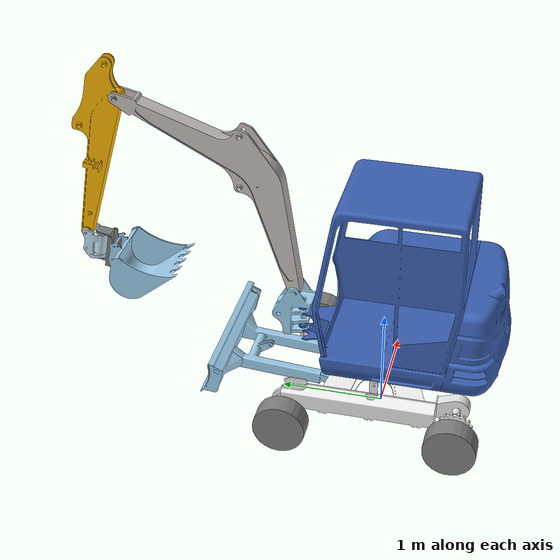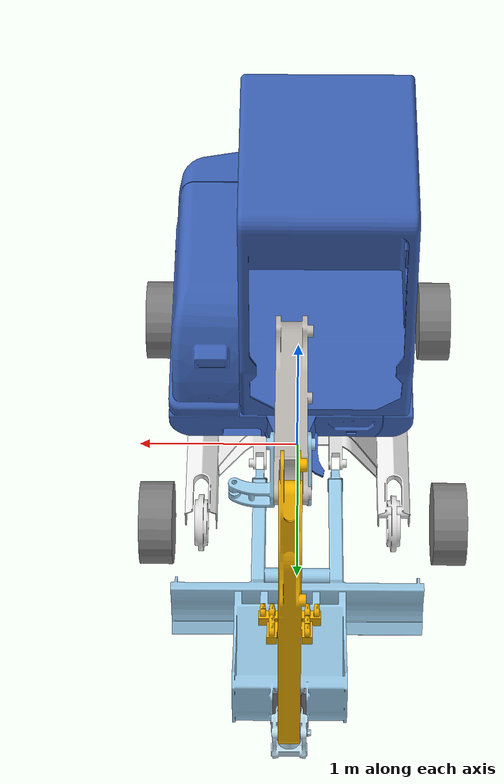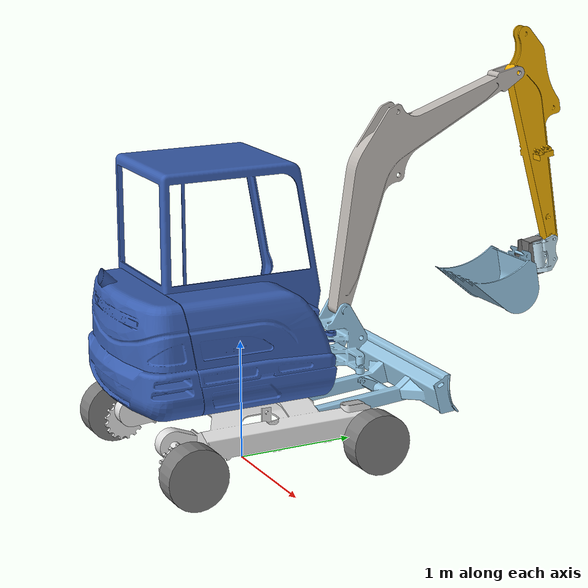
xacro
<?xml version="1.0"?>
<!-- BASE ROBOT XACRO -->
<robot xmlns:xacro="http://www.ros.org/wiki/xacro" name="excavator">

    <!-- EXCAVATOR SPECIFIC CONSTANTS -->
    <xacro:include filename="$(find sambot_description)/urdf/params.xacro" />

    <!-- JOINTS AND THEIR DYNAMICS -->
    <xacro:include filename="$(find sambot_description)/urdf/velocity/joints.xacro" />

    <link name="base_link"/>

    <link name="cabin_base">
        <visual>
            <origin xyz="${cabin_base_origin}" rpy="${cabin_base_rpy}" />
            <geometry>
                <mesh filename="${cabin_base_mesh}"/>
            </geometry>
            <material name="compact_excavator_cabin_body_material">
                <color rgba="${cabin_base_material}"/>
            </material>
        </visual>
        <collision>
            <origin xyz="${cabin_base_origin}" rpy="${cabin_base_rpy}" />
            <geometry>
                <mesh filename="${cabin_base_mesh}"/>
            </geometry>
        </collision>
        <inertial>
            <origin xyz="${cabin_inertial_origin}" rpy="${cabin_inertial_rpy}"/>
            <mass value="${cabin_base_mass}" />
            <inertia
                ixx="${cabin_base_inertial.split()[0]}"
                ixy="${cabin_base_inertial.split()[1]}"
                ixz="${cabin_base_inertial.split()[2]}"
                iyy="${cabin_base_inertial.split()[3]}"
                iyz="${cabin_base_inertial.split()[4]}"
                izz="${cabin_base_inertial.split()[5]}"
            />

        </inertial>
    </link>

    <link name="turret_base">
        <visual>
            <origin xyz="${turret_base_origin}" rpy="${turret_base_rpy}" />
            <geometry>
                <mesh filename="${turret_base_mesh}"/>
            </geometry>
            <material name="compact_excavator_frame_body_material">
                <color rgba="${turret_base_material}"/>
            </material>
        </visual>
        <collision>
            <origin xyz="${turret_base_origin}" rpy="${turret_base_rpy}" />
            <geometry>
                <mesh filename="${turret_base_mesh}"/>
            </geometry>
        </collision>
        <inertial>
            <origin xyz="${turret_base_inertial_origin}" rpy="${turret_base_inertial_rpy}"/>
            <mass value="${turret_base_mass}" />
            <inertia
                ixx="${turret_base_inertial.split()[0]}"
                ixy="${turret_base_inertial.split()[1]}"
                ixz="${turret_base_inertial.split()[2]}"
                iyy="${turret_base_inertial.split()[3]}"
                iyz="${turret_base_inertial.split()[4]}"
                izz="${turret_base_inertial.split()[5]}"
            />
        </inertial>
    </link>

    <link name="left_spinning_wheel_link">
        <visual>
            <origin xyz="${left_spinning_wheel_link_origin}" rpy="${left_spinning_wheel_link_rpy}" />
            <geometry>
                <mesh filename="${left_spinning_wheel_link_mesh}"/>
            </geometry>
            <material name="compact_excavator_main_drive_wheel_material">
                <color rgba="${left_spinning_wheel_link_material}"/>
            </material>
        </visual>
        <collision>
            <origin xyz="${left_spinning_wheel_link_origin}" rpy="${left_spinning_wheel_link_rpy}" />
            <geometry>
                <mesh filename="${left_spinning_wheel_link_mesh}"/>
            </geometry>
        </collision>
        <inertial>
            <origin xyz="${left_spinning_wheel_link_inertial_origin}" rpy="${left_spinning_wheel_link_inertial_rpy}"/>
            <mass value="${left_spinning_wheel_link_mass}" />
            <inertia
                ixx="${left_spinning_wheel_link_inertial.split()[0]}"
                ixy="${left_spinning_wheel_link_inertial.split()[1]}"
                ixz="${left_spinning_wheel_link_inertial.split()[2]}"
                iyy="${left_spinning_wheel_link_inertial.split()[3]}"
                iyz="${left_spinning_wheel_link_inertial.split()[4]}"
                izz="${left_spinning_wheel_link_inertial.split()[5]}"
            />
        </inertial>
    </link>

    <link name="right_spinning_wheel_link">
        <visual>
            <origin xyz="${right_spinning_wheel_link_origin}" rpy="${right_spinning_wheel_link_rpy}" />
            <geometry>
                <mesh filename="${right_spinning_wheel_link_mesh}"/>
            </geometry>
            <material name="compact_excavator_main_drive_wheel_material">
                <color rgba="${right_spinning_wheel_link_material}"/>
            </material>
        </visual>
        <collision>
            <origin xyz="${right_spinning_wheel_link_origin}" rpy="${right_spinning_wheel_link_rpy}" />
            <geometry>
                <mesh filename="${right_spinning_wheel_link_mesh}"/>
            </geometry>
        </collision>
        <inertial>
            <origin xyz="${right_spinning_wheel_link_inertial_origin}" rpy="${right_spinning_wheel_link_inertial_rpy}"/>
            <mass value="${right_spinning_wheel_link_mass}" />
            <inertia
                ixx="${right_spinning_wheel_link_inertial.split()[0]}"
                ixy="${right_spinning_wheel_link_inertial.split()[1]}"
                ixz="${right_spinning_wheel_link_inertial.split()[2]}"
                iyy="${right_spinning_wheel_link_inertial.split()[3]}"
                iyz="${right_spinning_wheel_link_inertial.split()[4]}"
                izz="${right_spinning_wheel_link_inertial.split()[5]}"
            />
        </inertial>
    </link>

    <link name="left_front_wheel_link">
        <visual>
            <origin xyz="${left_front_wheel_link_origin}" rpy="${left_front_wheel_link_rpy}" />
            <geometry>
                <mesh filename="${left_front_wheel_link_mesh}"/>
            </geometry>
            <material name="compact_excavator_front_wheel_material">
                <color rgba="${left_front_wheel_link_material}"/>
            </material>
        </visual>
        <collision>
            <origin xyz="${left_front_wheel_link_origin}" rpy="${left_front_wheel_link_rpy}" />
            <geometry>
                <mesh filename="${left_front_wheel_link_mesh}"/>
            </geometry>
        </collision>
        <inertial>
            <origin xyz="${left_front_wheel_link_inertial_origin}" rpy="${left_front_wheel_link_inertial_rpy}"/>
            <mass value="${left_front_wheel_link_mass}" />
            <inertia
                ixx="${left_front_wheel_link_inertial.split()[0]}"
                ixy="${left_front_wheel_link_inertial.split()[1]}"
                ixz="${left_front_wheel_link_inertial.split()[2]}"
                iyy="${left_front_wheel_link_inertial.split()[3]}"
                iyz="${left_front_wheel_link_inertial.split()[4]}"
                izz="${left_front_wheel_link_inertial.split()[5]}"
            />
        </inertial>
    </link>

    <link name="right_front_wheel_link">
        <visual>
            <origin xyz="${right_front_wheel_link_origin}" rpy="${right_front_wheel_link_rpy}" />
            <geometry>
                <mesh filename="${right_front_wheel_link_mesh}"/>
            </geometry>
            <material name="compact_excavator_front_wheel_material">
                <color rgba="${right_front_wheel_link_material}"/>
            </material>
        </visual>
        <collision>
            <origin xyz="${right_front_wheel_link_origin}" rpy="${right_front_wheel_link_rpy}" />
            <geometry>
                <mesh filename="${right_front_wheel_link_mesh}"/>
            </geometry>
        </collision>
        <inertial>
            <origin xyz="${right_front_wheel_link_inertial_origin}" rpy="${right_front_wheel_link_inertial_rpy}"/>
            <mass value="${right_front_wheel_link_mass}" />
            <inertia
                ixx="${right_front_wheel_link_inertial.split()[0]}"
                ixy="${right_front_wheel_link_inertial.split()[1]}"
                ixz="${right_front_wheel_link_inertial.split()[2]}"
                iyy="${right_front_wheel_link_inertial.split()[3]}"
                iyz="${right_front_wheel_link_inertial.split()[4]}"
                izz="${right_front_wheel_link_inertial.split()[5]}"
            />
        </inertial>
    </link>

    <link name="push_blade_base">
        <visual>
            <origin xyz="${push_blade_base_origin}" rpy="${push_blade_base_rpy}" />
            <geometry>
                <mesh filename="${push_blade_base_mesh}"/>
            </geometry>
            <material name="push_blade_base_material">
                <color rgba="${push_blade_base_material}"/>
            </material>
        </visual>
        <collision>
            <origin xyz="${push_blade_base_origin}" rpy="${push_blade_base_rpy}" />
            <geometry>
                <mesh filename="${push_blade_base_mesh}"/>
            </geometry>
        </collision>
        <inertial>
            <origin xyz="${push_blade_base_inertial_origin}" rpy="${push_blade_base_inertial_rpy}"/>
            <mass value="${push_blade_base_mass}" />
            <inertia
                ixx="${push_blade_base_inertial.split()[0]}"
                ixy="${push_blade_base_inertial.split()[1]}"
                ixz="${push_blade_base_inertial.split()[2]}"
                iyy="${push_blade_base_inertial.split()[3]}"
                iyz="${push_blade_base_inertial.split()[4]}"
                izz="${push_blade_base_inertial.split()[5]}"
            />
        </inertial>
    </link>

    <link name="swing_base">
        <visual>
            <origin xyz="${swing_base_origin}" rpy="${swing_base_rpy}" />
            <geometry>
                <mesh filename="${swing_base_mesh}"/>
            </geometry>
            <material name="part01_pin_1_material">
                <color rgba="${swing_base_material}"/>
            </material>
        </visual>
        <collision>
            <origin xyz="${swing_base_origin}" rpy="${swing_base_rpy}" />
            <geometry>
                <mesh filename="${swing_base_mesh}"/>
            </geometry>
        </collision>
        <inertial>
            <origin xyz="${swing_base_inertial_origin}" rpy="${swing_base_inertial_rpy}"/>
            <mass value="${swing_base_mass}" />
            <inertia
                ixx="${swing_base_inertial.split()[0]}"
                ixy="${swing_base_inertial.split()[1]}"
                ixz="${swing_base_inertial.split()[2]}"
                iyy="${swing_base_inertial.split()[3]}"
                iyz="${swing_base_inertial.split()[4]}"
                izz="${swing_base_inertial.split()[5]}"
            />
        </inertial>
    </link>

    <link name="boom_base">
        <visual>
            <origin xyz="${boom_base_origin}" rpy="${boom_base_rpy}" />
            <geometry>
                <mesh filename="${boom_base_mesh}"/>
            </geometry>
            <material name="part02_material">
                <color rgba="${boom_base_material}"/>
            </material>
        </visual>
        <collision>
            <origin xyz="${boom_base_origin}" rpy="${boom_base_rpy}" />
            <geometry>
                <mesh filename="${boom_base_mesh}"/>
            </geometry>
        </collision>
        <inertial>
            <origin xyz="${boom_base_inertial_origin}" rpy="${boom_base_inertial_rpy}"/>
            <mass value="${boom_base_mass}" />
            <inertia
                ixx="${boom_base_inertial.split()[0]}"
                ixy="${boom_base_inertial.split()[1]}"
                ixz="${boom_base_inertial.split()[2]}"
                iyy="${boom_base_inertial.split()[3]}"
                iyz="${boom_base_inertial.split()[4]}"
                izz="${boom_base_inertial.split()[5]}"
            />
        </inertial>
    </link>

    <link name="arm_base">
        <visual>
            <origin xyz="${arm_base_origin}" rpy="${arm_base_rpy}" />
            <geometry>
                <mesh filename="${arm_base_mesh}"/>
            </geometry>
            <material name="part03_material">
                <color rgba="${arm_base_material}"/>
            </material>
        </visual>
        <collision>
            <origin xyz="${arm_base_origin}" rpy="${arm_base_rpy}" />
            <geometry>
                <mesh filename="${arm_base_mesh}"/>
            </geometry>
        </collision>
        <inertial>
            <origin xyz="${arm_base_inertial_origin}" rpy="${arm_base_inertial_rpy}"/>
            <mass value="${arm_base_mass}" />
            <inertia
                ixx="${arm_base_inertial.split()[0]}"
                ixy="${arm_base_inertial.split()[1]}"
                ixz="${arm_base_inertial.split()[2]}"
                iyy="${arm_base_inertial.split()[3]}"
                iyz="${arm_base_inertial.split()[4]}"
                izz="${arm_base_inertial.split()[5]}"
            />
        </inertial>
    </link>

    <link name="${bucket_link_name}">
        <visual>
            <origin xyz="${bucket_mesh1_origin}" rpy="${bucket_mesh1_rpy}" />
            <geometry>
                <mesh filename="${bucket_mesh1}"/>
            </geometry>
            <material name="part04_material">
                <color rgba="${bucket_mesh1_material}"/>
            </material>
        </visual>
        <collision>
            <origin xyz="${bucket_mesh1_origin}" rpy="${bucket_mesh1_rpy}" />
            <geometry>
                <mesh filename="${bucket_mesh1}"/>
            </geometry>
        </collision>
        <inertial>
            <origin xyz="${bucket_inertial_origin}" rpy="${bucket_inertial_rpy}"/>
            <mass value="${bucket_base_mass}" />
            <inertia
                ixx="${bucket_base_inertial.split()[0]}"
                ixy="${bucket_base_inertial.split()[1]}"
                ixz="${bucket_base_inertial.split()[2]}"
                iyy="${bucket_base_inertial.split()[3]}"
                iyz="${bucket_base_inertial.split()[4]}"
                izz="${bucket_base_inertial.split()[5]}"
            />
        </inertial>
        <visual>
            <origin xyz="${bucket_mesh2_origin}" rpy="${bucket_mesh2_rpy}" />
            <geometry>
                <mesh filename="${bucket_mesh2}"/>
            </geometry>
            <material name="bucket_material">
                <color rgba="${bucket_mesh2_material}"/>
            </material>
        </visual>
        <collision>
            <origin xyz="${bucket_mesh2_origin}" rpy="${bucket_mesh2_rpy}" />
            <geometry>
                <mesh filename="${bucket_mesh2}"/>
            </geometry>
        </collision>
        <visual>
            <origin xyz="${bucket_mesh3_origin}" rpy="${bucket_mesh3_rpy}" />
            <geometry>
                <mesh filename="${bucket_mesh3}"/>
            </geometry>
            <material name="bucket_mount_material">
                <color rgba="${bucket_mesh3_material}"/>
            </material>
        </visual>
        <collision>
            <origin xyz="${bucket_mesh3_origin}" rpy="${bucket_mesh3_rpy}" />
            <geometry>
                <mesh filename="${bucket_mesh3}"/>
            </geometry>
        </collision>
    </link>

    <!-- SKID WHEELS FOR SKID-STEER CONTROL -->
    <xacro:skid_wheel wheel_name="${left_skid_wheel_spinning_link_name}" mu1="1" mu2="1"/>
    <xacro:skid_wheel wheel_name="${left_skid_wheel_free_link_name}" mu1="1" mu2="1"/>
    <xacro:skid_wheel wheel_name="${right_skid_wheel_spinning_link_name}" mu1="1" mu2="1"/>
    <xacro:skid_wheel wheel_name="${right_skid_wheel_free_link_name}" mu1="1" mu2="1"/>

    <xacro:dynamics_plugins/>
</robot>

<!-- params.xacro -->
<robot xmlns:xacro="http://ros.org/wiki/xacro">
    <xacro:property name="mesh_root" value="file://$(find sambot_description)/meshes"/>

    <!-- MAIN LINK NAMES -->
    <xacro:property name="base_link_name" value="base_link"/>
    <xacro:property name="cabin_link_name" value="cabin_base"/>
    <xacro:property name="turret_link_name" value="turret_base"/>
    <xacro:property name="plow_link_name" value="push_blade_base"/>
    <xacro:property name="swing_link_name" value="swing_base"/>
    <xacro:property name="boom_link_name" value="boom_base"/>
    <xacro:property name="arm_link_name" value="arm_base"/>
    <xacro:property name="bucket_link_name" value="bucket_base"/>

    <!-- WHEEL LINKS -->
    <xacro:property name="left_spinning_wheel_link_name" value="left_spinning_wheel_link"/>
    <xacro:property name="right_spinning_wheel_link_name" value="right_spinning_wheel_link"/>
    <xacro:property name="left_front_wheel_link_name" value="left_front_wheel_link"/>
    <xacro:property name="right_front_wheel_link_name" value="right_front_wheel_link"/>
    <xacro:property name="left_skid_wheel_spinning_link_name" value="left_skid_wheel_spinning"/>
    <xacro:property name="left_skid_wheel_free_link_name" value="left_skid_wheel_free"/>
    <xacro:property name="right_skid_wheel_spinning_link_name" value="right_skid_wheel_spinning"/>
    <xacro:property name="right_skid_wheel_free_link_name" value="right_skid_wheel_free"/>

    <!-- JOINT NAMES -->
    <xacro:property name="base_to_turret_joint_name" value="base_to_turret"/>
    <xacro:property name="left_spinning_to_turret_joint_name" value="left_spinning_to_turret"/>
    <xacro:property name="left_front_to_turret_joint_name" value="left_front_to_turret"/>
    <xacro:property name="right_spinning_to_turret_joint_name" value="right_spinning_to_turret"/>
    <xacro:property name="right_front_to_turret_joint_name" value="right_front_to_turret"/>
    <xacro:property name="plow_to_base_joint_name" value="plow_to_base"/>
    <xacro:property name="swing_to_boom_joint_name" value="swing_to_boom"/>
    <xacro:property name="boom_to_arm_joint_name" value="boom_to_arm"/>
    <xacro:property name="arm_to_bucket_joint_name" value="arm_to_bucket"/>
    <xacro:property name="cabin_to_swing_joint_name" value="cabin_to_swing"/>
    <xacro:property name="excavator_slew_joint_name" value="excavator_slew"/>
    <xacro:property name="left_spin_to_skid_joint_name" value="left_spin_to_skid"/>
    <xacro:property name="left_free_to_skid_joint_name" value="left_free_to_skid"/>
    <xacro:property name="right_spin_to_skid_joint_name" value="right_spin_to_skid"/>
    <xacro:property name="right_free_to_skid_joint_name" value="right_free_to_skid"/>

    <!-- CABIN LINK PARAMS -->
    <xacro:property name="cabin_base_mesh" value="${mesh_root}/compact_excavator_cabin_body.stl"/>
    <xacro:property name="cabin_base_origin" value="0.1592 -0.2513 0.2814"/>
    <xacro:property name="cabin_base_rpy" value="0 0 0"/>
    <xacro:property name="cabin_base_mass" value="9732.8039"/>
    <xacro:property name="cabin_inertial_origin" value="-0.1469 0.4412 0.4509"/>
    <xacro:property name="cabin_inertial_rpy" value="0 0 0"/>
    <xacro:property name="cabin_base_material" value="0.2314 0.3804 0.7059 1.0"/>
    <xacro:property name="cabin_base_inertial" value="3175.1655302028038932 -269.97312494382822479 167.61780128589879268 2627.6328649732372469 -193.85494965010886403 3742.616047274826542"/>

    <!-- TURRET PARAMS -->
    <xacro:property name="turret_base_mesh" value="${mesh_root}/compact_excavator_frame_body.stl"/>
    <xacro:property name="turret_base_origin" value="0 0 0"/>
    <xacro:property name="turret_base_rpy" value="0 0 0"/>
    <xacro:property name="turret_base_mass" value="459.1171"/>
    <xacro:property name="turret_base_inertial_origin" value="-0.0068 -0.1255 -0.1865"/>
    <xacro:property name="turret_base_inertial_rpy" value="0 0 0"/>
    <xacro:property name="turret_base_material" value="0.9176 0.9176 0.9176 1.0"/>
    <xacro:property name="turret_base_inertial" value="103.54309263053609413 2.8689912175751035583 -0.26918599165092144121 71.550382439979060223 -8.7881744003938315757 164.71779214088334697"/>

    <!-- LEFT SPINNING (BACK) WHEEL -->
    <xacro:property name="left_spinning_wheel_link_mesh" value="${mesh_root}/compact_excavator_main_drive_wheel.stl"/>
    <xacro:property name="left_spinning_wheel_link_origin" value="0 -2.0816681711721685133e-17 -0.015000000000000124345"/>
    <xacro:property name="left_spinning_wheel_link_rpy" value="-4.71 0 0"/>
    <xacro:property name="left_spinning_wheel_link_material" value="0.91764705882352937127 0.91764705882352937127 0.91764705882352937127 1.0"/>
    <xacro:property name="left_spinning_wheel_link_inertial_origin" value="2.7929494467705319618e-05 -2.4226277708340838271e-16 -0.047030821852304713349"/>
    <xacro:property name="left_spinning_wheel_link_inertial_rpy" value="0 0 0"/>
    <xacro:property name="left_spinning_wheel_link_mass" value="35.986291345795820007"/>
    <xacro:property name="left_spinning_wheel_link_inertial" value="0.20071737580058110484 2.1151248144254331483e-17 7.9696042408110000254e-05 0.20066206838835709547 2.9623558171777900037e-16 0.29333573070696433716"/>

    <!-- RIGHT SPINNING (BACK) WHEEL -->
    <xacro:property name="right_spinning_wheel_link_mesh" value="${mesh_root}/compact_excavator_main_drive_wheel.stl"/>
    <xacro:property name="right_spinning_wheel_link_origin" value="-6.9388939039072283776e-18 0 -0.015000000000000013323"/>
    <xacro:property name="right_spinning_wheel_link_rpy" value="1.57 0 0"/>
    <xacro:property name="right_spinning_wheel_link_material" value="0.91764705882352937127 0.91764705882352937127 0.91764705882352937127 1.0"/>
    <xacro:property name="right_spinning_wheel_link_inertial_origin" value="2.7929494467698390888e-05 -2.2144767850277592569e-16 -0.047030821852304602326"/>
    <xacro:property name="right_spinning_wheel_link_inertial_rpy" value="0 0 0"/>
    <xacro:property name="right_spinning_wheel_link_mass" value="35.986291345795820007"/>
    <xacro:property name="right_spinning_wheel_link_inertial" value="0.20071737580058127137 6.1250580134766935832e-18 7.9696042408110027359e-05 0.20066206838835703996 2.9623106429686494369e-16 0.29333573070696433716"/>

    <!-- LEFT FRONT WHEEL -->
    <xacro:property name="left_front_wheel_link_mesh" value="${mesh_root}/compact_excavator_front_wheel.stl"/>
    <xacro:property name="left_front_wheel_link_origin" value="1.1102230246251565404e-16 -1.1102230246251565404e-16 -0.032500000000000084377"/>
    <xacro:property name="left_front_wheel_link_rpy" value="0 1.570796326794896336 0"/>
    <xacro:property name="left_front_wheel_link_material" value="0.91764705882352937127 0.91764705882352937127 0.91764705882352937127 1.0"/>
    <xacro:property name="left_front_wheel_link_inertial_origin" value="8.8979772495497043726e-17 -1.1262368284473494847e-16 -0.032500000000000070499"/>
    <xacro:property name="left_front_wheel_link_inertial_rpy" value="0 0 0"/>
    <xacro:property name="left_front_wheel_link_mass" value="17.64673591392957519"/>
    <xacro:property name="left_front_wheel_link_inertial" value="0.153078316536178205 1.0629206596102168903e-17 2.6922495826861160064e-17 0.15307831653617814949 6.9747558075870228735e-33 0.29963755764746907717"/>

    <!-- RIGHT FRONT WHEEL -->
    <xacro:property name="right_front_wheel_link_mesh" value="${mesh_root}/compact_excavator_front_wheel.stl"/>
    <xacro:property name="right_front_wheel_link_origin" value="-2.7755575615628913511e-17 0 -0.032500000000000084377"/>
    <xacro:property name="right_front_wheel_link_rpy" value="-3.14 -1.570796326794896336 0"/>
    <xacro:property name="right_front_wheel_link_material" value="0.91764705882352937127 0.91764705882352937127 0.91764705882352937127 1.0"/>
    <xacro:property name="right_front_wheel_link_inertial_origin" value="-2.7755575615628913511e-17 0 -0.032500000000000084377"/>
    <xacro:property name="right_front_wheel_link_inertial_rpy" value="0 0 0"/>
    <xacro:property name="right_front_wheel_link_mass" value="17.64673591392957519"/>
    <xacro:property name="right_front_wheel_link_inertial" value="0.153078316536178205 -1.0629206596102168903e-17 2.6922495826861160064e-17 0.15307831653617814949 6.9747558075870228735e-33 0.29963755764746907717"/>

    <!-- PLOW -->
    <xacro:property name="push_blade_base_mesh" value="${mesh_root}/push_blade_bucket.stl"/>
    <xacro:property name="push_blade_base_origin" value="-0.021564399534920564161 1.0799900599760599018 -0.25500000000000000444"/>
    <xacro:property name="push_blade_base_rpy" value="-3.14 -1.57 0"/>
    <xacro:property name="push_blade_base_material" value="0.61568627450980395466 0.81176470588235294379 0.92941176470588238168 1.0"/>
    <xacro:property name="push_blade_base_inertial_origin" value="-0.10970493109347190241 0.88075063461342828486 -0.25500033703320834633"/>
    <xacro:property name="push_blade_base_inertial_rpy" value="0 0 0"/>
    <xacro:property name="push_blade_base_mass" value="147.01808168083425699"/>
    <xacro:property name="push_blade_base_inertial" value="31.881096131626421197 0.91247385061899932701 -1.6212090668492922982e-05 21.196220352263214437 4.9900082202379639952e-06 13.169227707961496776"/>

    <!-- SWING -->
    <xacro:property name="swing_base_mesh" value="${mesh_root}/part01_pin_1.stl"/>
    <xacro:property name="swing_base_origin" value="2.7755575615628913511e-17 0.074999999999999955591 -0.14999999999999996669"/>
    <xacro:property name="swing_base_rpy" value="-3.14 -6.1629758220391547298e-33 -3.9110122218931175387e-17"/>
    <xacro:property name="swing_base_material" value="0.61568627450980395466 0.81176470588235294379 0.92941176470588238168 1.0"/>
    <xacro:property name="swing_base_inertial_origin" value="-0.026030309007671018073 0.10672288733099301317 0.097553850513847364945"/>
    <xacro:property name="swing_base_inertial_rpy" value="0 0 0"/>
    <xacro:property name="swing_base_mass" value="98.140190062279060612"/>
    <xacro:property name="swing_base_inertial" value="2.6085778666185075458 0.040227300901953748358 0.42136783119553594679 3.1665232143977135593 -0.15916376835413623136 1.7889951810686841593"/>

    <!-- BOOM -->
    <xacro:property name="boom_base_mesh" value="${mesh_root}/part02.stl"/>
    <xacro:property name="boom_base_origin" value="0 -1.1102230246251565404e-16 -0.079999999999999987788"/>
    <xacro:property name="boom_base_rpy" value="-1.57 0 0"/>
    <xacro:property name="boom_base_material" value="0.77647058823529413463 0.7568627450980391913 0.73725490196078435901 1.0"/>
    <xacro:property name="boom_base_inertial_origin" value="-0.04007940207094668611 1.215334476695421273 -0.079873417172118876817"/>
    <xacro:property name="boom_base_inertial_rpy" value="0 0 0"/>
    <xacro:property name="boom_base_mass" value="694.17793513858055121"/>
    <xacro:property name="boom_base_inertial" value="242.81245205849677404 71.370938403077758494 0.0065905643878567711502 49.641340591529456105 -0.034260052091464154866 289.83702909122945357"/>

    <!-- ARM -->
    <xacro:property name="arm_base_mesh" value="${mesh_root}/part03.stl"/>
    <xacro:property name="arm_base_origin" value="0 -2.2204460492503130808e-16 -0.054999999999999882316"/>
    <xacro:property name="arm_base_rpy" value="1.57 0 0"/>
    <xacro:property name="arm_base_material" value="0.98039215686274505668 0.71372549019607844922 0.0039215686274509803377 1.0"/>
    <xacro:property name="arm_base_inertial_origin" value="0.10866226733951289685 -0.60164797350906107365 -0.055167291851018741833"/>
    <xacro:property name="arm_base_inertial_rpy" value="0 0 0"/>
    <xacro:property name="arm_base_mass" value="265.34907807560875881"/>
    <xacro:property name="arm_base_inertial" value="57.599134249663784146 0.078442580554215754485 0.0049826290162324230956 1.8968981412117758012 0.02459901605653430981 58.868680211308259231"/>

    <!-- BUCKET(S) -->
    <xacro:property name="bucket_mesh1" value="${mesh_root}/part04.stl"/>
    <xacro:property name="bucket_mesh1_origin" value="0.060000000000000053291 0.14000000000000012434 0.054999999999999993339"/>
    <xacro:property name="bucket_mesh1_rpy" value="-3.14 -1.57 0"/>
    <xacro:property name="bucket_mesh1_material" value="0.76862745098039220171 0.88627450980392152857 0.95294117647058818044 1.0"/>
    <xacro:property name="bucket_mesh2" value="${mesh_root}/bucket.stl"/>
    <xacro:property name="bucket_mesh2_origin" value="0.078718096856630614955 0.97961106773940276327 0.054999999999992416067"/>
    <xacro:property name="bucket_mesh2_rpy" value="-1.57 0 3"/>
    <xacro:property name="bucket_mesh2_material" value="0.61568627450980395466 0.81176470588235294379 0.92941176470588238168 1.0"/>
    <xacro:property name="bucket_mesh3" value="${mesh_root}/bucket_mount.stl"/>
    <xacro:property name="bucket_mesh3_origin" value="0.16999999999999237943 0.30800000000000604672 0.054999999999999299449"/>
    <xacro:property name="bucket_mesh3_rpy" value="-4.71 -1.57 0"/>
    <xacro:property name="bucket_mesh3_material" value="0.49803921568627451677 0.49803921568627451677 0.49803921568627451677 1.0"/>
    <xacro:property name="bucket_inertial_origin" value="0.21363777998579594475 0.42618058483691984017 0.055071497454761988988"/>
    <xacro:property name="bucket_inertial_rpy" value="0 0 0"/>
    <xacro:property name="bucket_base_mass" value="132.70765933863819441"/>
    <xacro:property name="bucket_base_inertial" value="14.03567187790122972 -1.6652440163767181502 0.0020270508814650067472 6.8549730106956987541 0.0040437120644442776929 11.610921270718170817"/>

    <!-- SKID WHEELS FOR DIFF DRIVE -->
    <xacro:property name="rubber_density" value="1100"/>
    <xacro:property name="wheel_radius" value="0.25"/>
    <xacro:property name="wheel_length" value="0.2"/>

    <xacro:macro name="skid_wheel" params="wheel_name mu1 mu2">
        <!-- MULTIPLIED BY 100 TO ANCHOR -->
        <xacro:property name="wheel_mass" value="${100*3.1415*(wheel_radius**2)*wheel_length*rubber_density}"/>
        <xacro:property name="wheel_ixx" value="${(1/12)*wheel_mass*(3*wheel_radius**2 + wheel_length**2)}"/>
        <xacro:property name="wheel_iyy" value="${(1/12)*wheel_mass*(3*wheel_radius**2 + wheel_length**2)}"/>
        <xacro:property name="wheel_izz" value="${(1/2)*wheel_mass*wheel_radius**2}"/>
        <link name="${wheel_name}">
            <visual>
                <origin xyz="0 0 0" rpy="0 0 0"/>
                <geometry>
                    <cylinder radius="${wheel_radius}" length="${wheel_length}"/>
                </geometry>
                <material name="wheel_material">
                    <color rgba="0.5 0.5 0.5 1.0"/>
                </material>
            </visual>
            <collision>
                <origin xyz="0 0 0" rpy="0 0 0"/>
                <geometry>
                    <cylinder radius="${wheel_radius}" length="${wheel_length}"/>
                </geometry>
            </collision>
            <surface>
                <friction>
                    <ode>
                        <mu>${mu1}</mu>
                        <mu2>${mu2}</mu2>
                    </ode>
                </friction>
            </surface>
            <inertial>
                <origin xyz="0 0 0" rpy="0 0 0"/>
                <mass value="${wheel_mass}"/>
                <inertia ixx="${wheel_ixx}" ixy="0" ixz="0" iyy="${wheel_iyy}" iyz="0" izz="${wheel_izz}"/>
            </inertial>
        </link>
    </xacro:macro>

</robot>

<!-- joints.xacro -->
<robot xmlns:xacro="http://ros.org/wiki/xacro">

    <xacro:include filename="$(find sambot_description)/urdf/params.xacro"/>
    <xacro:include filename="$(find sambot_description)/urdf/velocity/dynamics.xacro"/>

    <xacro:macro name="joint_dynamics" params="limit_lower limit_upper effort velocity dyn_damping friction stiffness damping">
        <limit effort="${effort}" velocity="${velocity}" lower="${limit_lower}" upper="${limit_upper}"/>
        <stiffness>${stiffness}</stiffness>
            <damping>${damping}</damping>
            <pid>
                <p>1</p>
                <i>0</i>
                <d>0</d>
            </pid>
        <dynamics damping="${dyn_damping}" friction="${friction}"/>
    </xacro:macro>

    <joint name="${left_spin_to_skid_joint_name}" type="fixed">
        <origin xyz="0 0 -0.3" rpy="0 0 0"/>
        <parent link="${left_spinning_wheel_link_name}"/>
        <child link="${left_skid_wheel_spinning_link_name}"/>
        <axis xyz="0 0 1"/>

    </joint>

    <joint name="${left_free_to_skid_joint_name}" type="fixed">
        <origin xyz="0 0 0.3" rpy="0 0 0"/>
        <parent link="${left_front_wheel_link_name}"/>
        <child link="${left_skid_wheel_free_link_name}"/>
        <axis xyz="0 0 1"/>
    </joint>

    <joint name="${right_spin_to_skid_joint_name}" type="fixed">
        <origin xyz="0 0 -0.3" rpy="0 0 0"/>
        <parent link="${right_spinning_wheel_link_name}"/>
        <child link="${right_skid_wheel_spinning_link_name}"/>
        <axis xyz="0 0 1"/>
    </joint>

    <joint name="${right_free_to_skid_joint_name}" type="fixed">
        <origin xyz="0 0 -0.3" rpy="0 0 0"/>
        <parent link="${right_front_wheel_link_name}"/>
        <child link="${right_skid_wheel_free_link_name}"/>
        <axis xyz="0 0 1"/>
    </joint>

    <joint name="${base_to_turret_joint_name}" type="fixed">
        <origin xyz="0 0 0.55" rpy="0 0 0" />
        <parent link="${base_link_name}" />
        <child link="${turret_link_name}" />
        <axis xyz="0 0 1"/>
    </joint>

    <joint name="${left_spinning_to_turret_joint_name}" type="continuous">
        <origin xyz="-0.5739999999999999547 -0.80000000000000015543 -0.2750000000000000222" rpy="1.570796326794896558 -0.3547477759675310427 1.5707963267948976682" />
        <parent link="${turret_link_name}" />
        <child link="${left_spinning_wheel_link_name}" />
        <axis xyz="0 0 1"/>
        <limit effort="1000" velocity="1" />
    </joint>

    <joint name="${right_spinning_to_turret_joint_name}" type="continuous">
        <origin xyz="0.5739999999999999547 -0.80000000000000004441 -0.2750000000000000222" rpy="1.570796326794896558 -1.2984776443375001254 -1.5707963267948972241" />
        <parent link="${turret_link_name}" />
        <child link="${right_spinning_wheel_link_name}" />
        <axis xyz="0 0 1"/>
        <limit effort="1000" velocity="1" />
    </joint>

    <joint name="${left_front_to_turret_joint_name}" type="continuous">
        <origin xyz="-0.61299999999999998934 0.80000000000000026645 -0.2750000000000000222" rpy="1.570796326794896558 -1.0222876983448163646 -1.5707963267948941155" />
        <parent link="${turret_link_name}" />
        <child link="${left_front_wheel_link_name}" />
        <axis xyz="0 0 1"/>
        <limit effort="1000" velocity="1" />
    </joint>

    <joint name="${right_front_to_turret_joint_name}" type="continuous">
        <origin xyz="0.54800000000000004263 0.80000000000000015543 -0.27499999999999996669" rpy="1.57079632679489678 -1.1102232252180887662e-16 -1.5707963267948976682" />
        <parent link="${turret_link_name}" />
        <child link="${right_front_wheel_link_name}" />
        <axis xyz="0 0 1"/>
        <limit effort="1000" velocity="1" />
    </joint>

    <joint name="${plow_to_base_joint_name}" type="revolute">
        <origin xyz="-0.25500000000000005995 0.4880000000000002669 -0.20500000000000001554" rpy="1.570796326794896558 -1.3195606112546109934 -1.57079632679489678" />
        <parent link="${turret_link_name}" />
        <child link="${plow_link_name}" />
        <axis xyz="0 0 1"/>
        <limit effort="1000" velocity="1" lower="0.2" upper="0" />
    </joint>

    <joint name="${excavator_slew_joint_name}" type="continuous">
        <origin xyz="0 0 0.1" rpy="-5.5511151231419568159e-17 -1.1102230246202266528e-16 -3.1415" />
        <parent link="${turret_link_name}" />
        <child link="${cabin_link_name}" />
        <axis xyz="0 0 1"/>
        <limit effort="1000" velocity="1"/>
    </joint>

    <joint name="${arm_to_bucket_joint_name}" type="revolute">
        <origin xyz="0.12000000000000410338 -1.5403327562575612752 9.4368957093138305936e-16" rpy="3.1415926535897917837 1.8859935444767496044e-16 -1.5963552846072552871" />
        <parent link="${arm_link_name}" />
        <child link="bucket_base" />
        <axis xyz="0 0 1"/>
        <xacro:joint_dynamics limit_lower="-1.57" limit_upper="0.5" effort="1000" velocity="1" dyn_damping="500" friction="0.1" stiffness="30000" damping="500"/>
    </joint>

    <joint name="${boom_to_arm_joint_name}" type="revolute">
        <origin xyz="-0.84000000000000030198 2.3549999999999999822 -0.13500000000000003664" rpy="3.1415926535897922278 6.9325343981756730312e-15 2.5555644018935783635" />
        <parent link="${boom_link_name}" />
        <child link="${arm_link_name}" />
        <axis xyz="0 0 1"/>
        <xacro:joint_dynamics limit_lower="-0.5" limit_upper="1.57" effort="1000" velocity="1" dyn_damping="500" friction="0.1" stiffness="30000" damping="500"/>
    </joint>

    <joint name="${swing_to_boom_joint_name}" type="revolute">
        <origin xyz="0.079999999999996157518 0.074999999999997291056 -0.1500000000000039635" rpy="-1.570796326794896558 0.39285813115170314935 -1.5707963267949009989" />
        <parent link="${swing_link_name}" />
        <child link="${boom_link_name}" />
        <axis xyz="0 0 1"/>
        <limit effort="1000" velocity="1.0" lower="-0.4" upper="1" />
        <xacro:joint_dynamics limit_lower="-0.4" limit_upper="1" effort="1000" velocity="1" dyn_damping="500" friction="0.1" stiffness="30000" damping="500"/>
    </joint>

    <joint name="${cabin_to_swing_joint_name}" type="revolute">
        <origin xyz="-0.040707723917193447405 -0.80673603465099630316 0.38039999999999996039" rpy="3.141592653589793116 4.8797124238540929311e-17 0" />
        <parent link="${cabin_link_name}" />
        <child link="${swing_link_name}" />
        <axis xyz="0 0 1"/>
        <xacro:joint_dynamics limit_lower="-0.1" limit_upper="0.1" effort="1000" velocity="1" dyn_damping="500" friction="0.1" stiffness="30000" damping="500"/>
        _
    </joint>
</robot>
